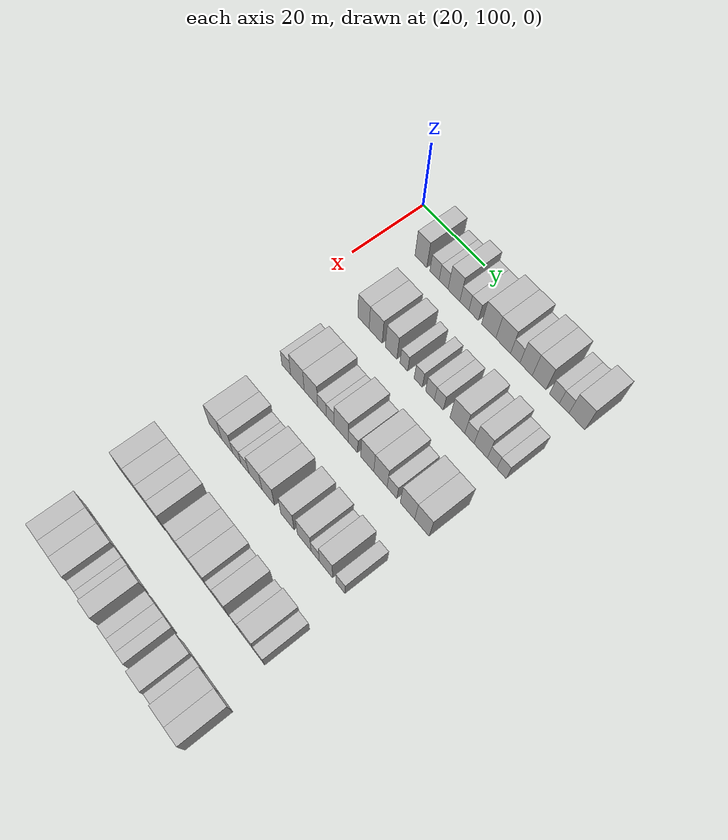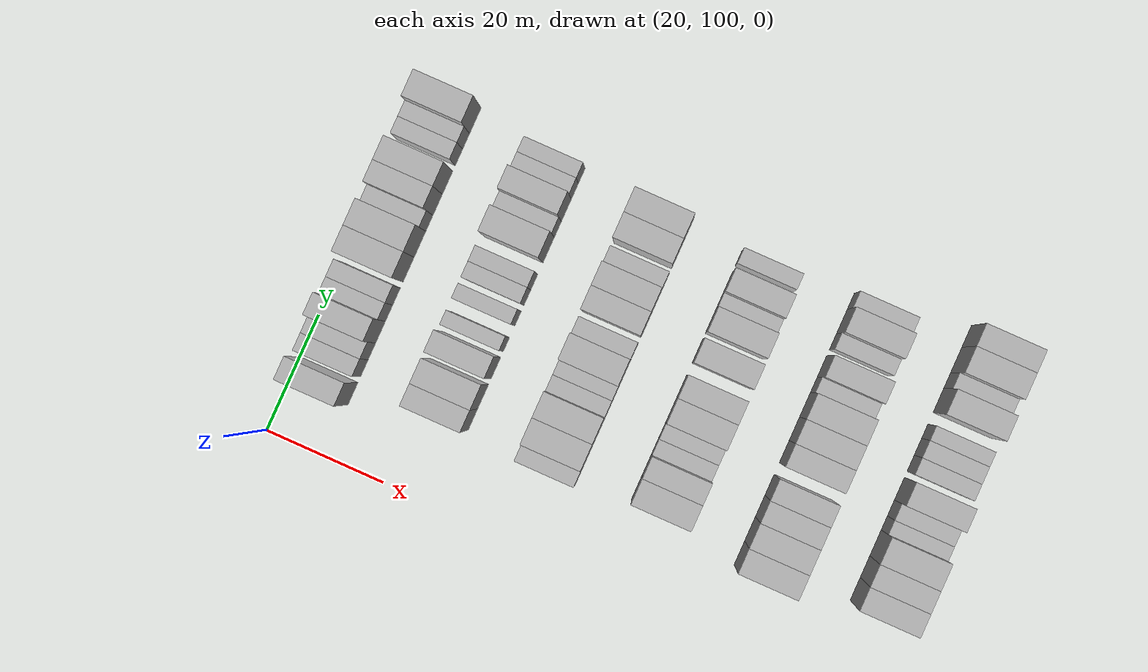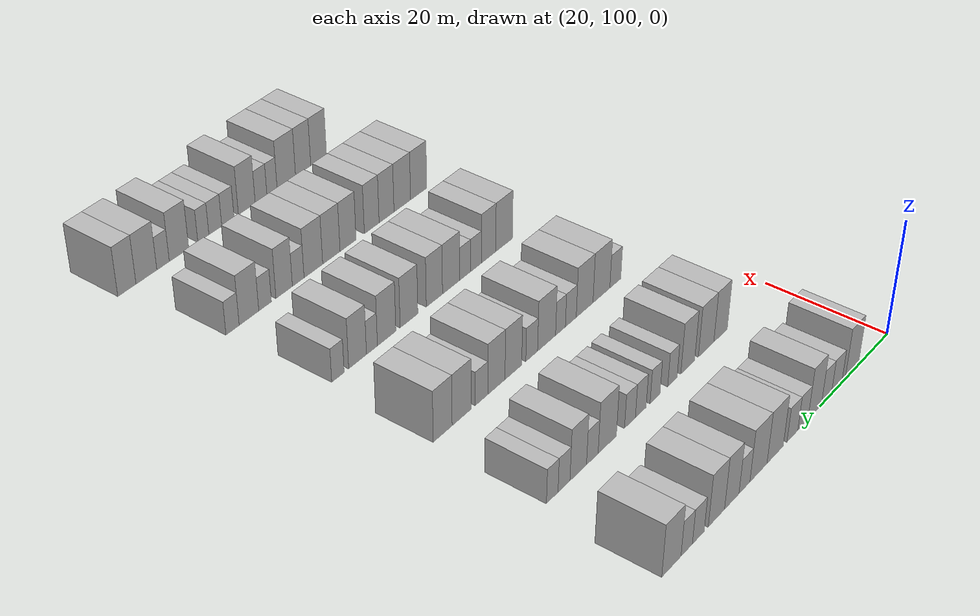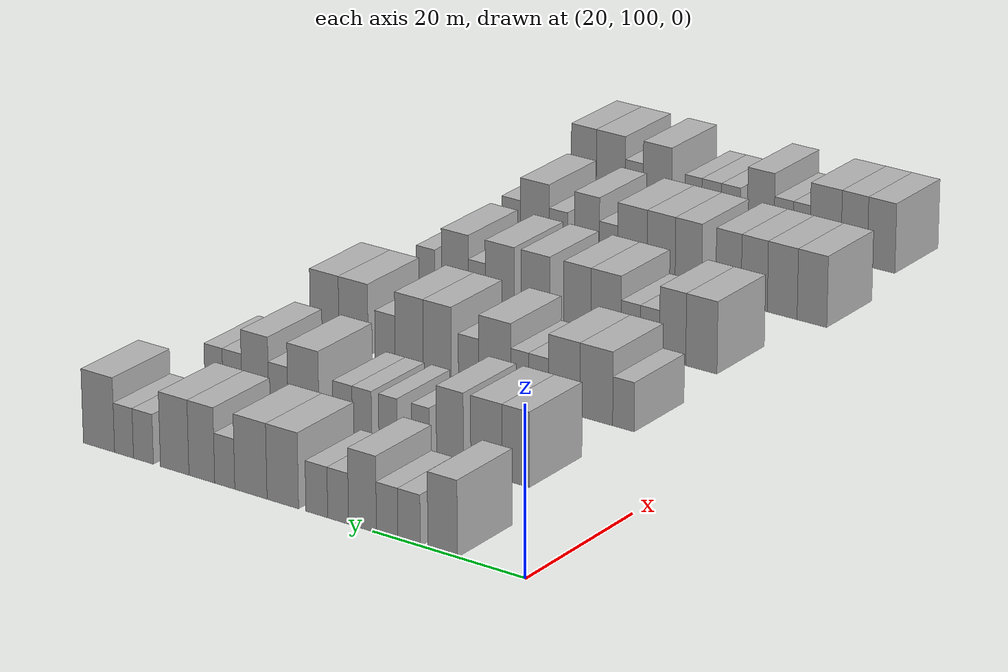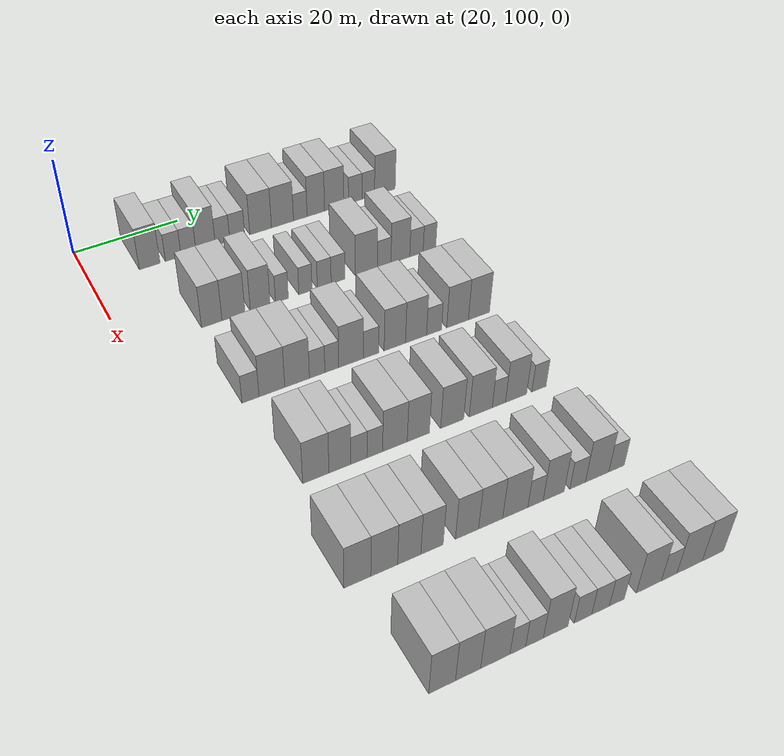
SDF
<sdf version="1.6">
 <world name="default">
  <model name="building_115">
   <static>1</static>
   <pose>25.0000 110.8154 0 0.000000 0.000000 0.000000</pose>
   <link name="link">
    <pose>0 0 4.50 0 0 0</pose>
    <collision name="collision"><geometry><box><size>10.0000 3.8846 9.0000</size></box></geometry></collision>
    <visual name="visual">
     <cast_shadows>0</cast_shadows>
     <geometry><box><size>10.0000 3.8846 9.0000</size></box></geometry>
     <material>
      <script>
       <uri>model://HANNAS_wall/materials/scripts</uri>
       <uri>model://HANNAS_wall/materials/textures</uri>
       <name>vrc/HANNAS_wall</name>
      </script>
     </material>
    </visual>
   </link>
  </model>
  <model name="building_116">
   <static>1</static>
   <pose>25.0000 115.2469 0 0.000000 0.000000 0.000000</pose>
   <link name="link">
    <pose>0 0 3.00 0 0 0</pose>
    <collision name="collision"><geometry><box><size>10.0000 2.9785 6.0000</size></box></geometry></collision>
    <visual name="visual">
     <cast_shadows>0</cast_shadows>
     <geometry><box><size>10.0000 2.9785 6.0000</size></box></geometry>
     <material>
      <script>
       <uri>model://HANNAS_wall/materials/scripts</uri>
       <uri>model://HANNAS_wall/materials/textures</uri>
       <name>vrc/HANNAS_wall</name>
      </script>
     </material>
    </visual>
   </link>
  </model>
  <model name="building_117">
   <static>1</static>
   <pose>25.0000 118.1664 0 0.000000 0.000000 0.000000</pose>
   <link name="link">
    <pose>0 0 3.00 0 0 0</pose>
    <collision name="collision"><geometry><box><size>10.0000 2.8604 6.0000</size></box></geometry></collision>
    <visual name="visual">
     <cast_shadows>0</cast_shadows>
     <geometry><box><size>10.0000 2.8604 6.0000</size></box></geometry>
     <material>
      <script>
       <uri>model://HANNAS_wall/materials/scripts</uri>
       <uri>model://HANNAS_wall/materials/textures</uri>
       <name>vrc/HANNAS_wall</name>
      </script>
     </material>
    </visual>
   </link>
  </model>
  <model name="building_118">
   <static>1</static>
   <pose>25.0000 121.4761 0 0.000000 0.000000 0.000000</pose>
   <link name="link">
    <pose>0 0 4.50 0 0 0</pose>
    <collision name="collision"><geometry><box><size>10.0000 3.7591 9.0000</size></box></geometry></collision>
    <visual name="visual">
     <cast_shadows>0</cast_shadows>
     <geometry><box><size>10.0000 3.7591 9.0000</size></box></geometry>
     <material>
      <script>
       <uri>model://HANNAS_wall/materials/scripts</uri>
       <uri>model://HANNAS_wall/materials/textures</uri>
       <name>vrc/HANNAS_wall</name>
      </script>
     </material>
    </visual>
   </link>
  </model>
  <model name="building_119">
   <static>1</static>
   <pose>25.0000 124.7653 0 0.000000 0.000000 0.000000</pose>
   <link name="link">
    <pose>0 0 3.00 0 0 0</pose>
    <collision name="collision"><geometry><box><size>10.0000 2.8192 6.0000</size></box></geometry></collision>
    <visual name="visual">
     <cast_shadows>0</cast_shadows>
     <geometry><box><size>10.0000 2.8192 6.0000</size></box></geometry>
     <material>
      <script>
       <uri>model://HANNAS_wall/materials/scripts</uri>
       <uri>model://HANNAS_wall/materials/textures</uri>
       <name>vrc/HANNAS_wall</name>
      </script>
     </material>
    </visual>
   </link>
  </model>
  <model name="building_120">
   <static>1</static>
   <pose>25.0000 127.6579 0 0.000000 0.000000 0.000000</pose>
   <link name="link">
    <pose>0 0 3.00 0 0 0</pose>
    <collision name="collision"><geometry><box><size>10.0000 2.9660 6.0000</size></box></geometry></collision>
    <visual name="visual">
     <cast_shadows>0</cast_shadows>
     <geometry><box><size>10.0000 2.9660 6.0000</size></box></geometry>
     <material>
      <script>
       <uri>model://HANNAS_wall/materials/scripts</uri>
       <uri>model://HANNAS_wall/materials/textures</uri>
       <name>vrc/HANNAS_wall</name>
      </script>
     </material>
    </visual>
   </link>
  </model>
  <model name="building_121">
   <static>1</static>
   <pose>25.0000 132.3076 0 0.000000 0.000000 0.000000</pose>
   <link name="link">
    <pose>0 0 4.50 0 0 0</pose>
    <collision name="collision"><geometry><box><size>10.0000 4.3334 9.0000</size></box></geometry></collision>
    <visual name="visual">
     <cast_shadows>0</cast_shadows>
     <geometry><box><size>10.0000 4.3334 9.0000</size></box></geometry>
     <material>
      <script>
       <uri>model://HANNAS_wall/materials/scripts</uri>
       <uri>model://HANNAS_wall/materials/textures</uri>
       <name>vrc/HANNAS_wall</name>
      </script>
     </material>
    </visual>
   </link>
  </model>
  <model name="building_122">
   <static>1</static>
   <pose>25.0000 136.7099 0 0.000000 0.000000 0.000000</pose>
   <link name="link">
    <pose>0 0 4.50 0 0 0</pose>
    <collision name="collision"><geometry><box><size>10.0000 4.4710 9.0000</size></box></geometry></collision>
    <visual name="visual">
     <cast_shadows>0</cast_shadows>
     <geometry><box><size>10.0000 4.4710 9.0000</size></box></geometry>
     <material>
      <script>
       <uri>model://HANNAS_wall/materials/scripts</uri>
       <uri>model://HANNAS_wall/materials/textures</uri>
       <name>vrc/HANNAS_wall</name>
      </script>
     </material>
    </visual>
   </link>
  </model>
  <model name="building_123">
   <static>1</static>
   <pose>25.0000 140.3420 0 0.000000 0.000000 0.000000</pose>
   <link name="link">
    <pose>0 0 3.00 0 0 0</pose>
    <collision name="collision"><geometry><box><size>10.0000 2.7933 6.0000</size></box></geometry></collision>
    <visual name="visual">
     <cast_shadows>0</cast_shadows>
     <geometry><box><size>10.0000 2.7933 6.0000</size></box></geometry>
     <material>
      <script>
       <uri>model://HANNAS_wall/materials/scripts</uri>
       <uri>model://HANNAS_wall/materials/textures</uri>
       <name>vrc/HANNAS_wall</name>
      </script>
     </material>
    </visual>
   </link>
  </model>
  <model name="building_124">
   <static>1</static>
   <pose>25.0000 143.5504 0 0.000000 0.000000 0.000000</pose>
   <link name="link">
    <pose>0 0 4.50 0 0 0</pose>
    <collision name="collision"><geometry><box><size>10.0000 3.6235 9.0000</size></box></geometry></collision>
    <visual name="visual">
     <cast_shadows>0</cast_shadows>
     <geometry><box><size>10.0000 3.6235 9.0000</size></box></geometry>
     <material>
      <script>
       <uri>model://HANNAS_wall/materials/scripts</uri>
       <uri>model://HANNAS_wall/materials/textures</uri>
       <name>vrc/HANNAS_wall</name>
      </script>
     </material>
    </visual>
   </link>
  </model>
  <model name="building_125">
   <static>1</static>
   <pose>25.0000 147.3735 0 0.000000 0.000000 0.000000</pose>
   <link name="link">
    <pose>0 0 4.50 0 0 0</pose>
    <collision name="collision"><geometry><box><size>10.0000 4.0228 9.0000</size></box></geometry></collision>
    <visual name="visual">
     <cast_shadows>0</cast_shadows>
     <geometry><box><size>10.0000 4.0228 9.0000</size></box></geometry>
     <material>
      <script>
       <uri>model://HANNAS_wall/materials/scripts</uri>
       <uri>model://HANNAS_wall/materials/textures</uri>
       <name>vrc/HANNAS_wall</name>
      </script>
     </material>
    </visual>
   </link>
  </model>
  <model name="building_126">
   <static>1</static>
   <pose>25.0000 151.8061 0 0.000000 0.000000 0.000000</pose>
   <link name="link">
    <pose>0 0 3.00 0 0 0</pose>
    <collision name="collision"><geometry><box><size>10.0000 2.8423 6.0000</size></box></geometry></collision>
    <visual name="visual">
     <cast_shadows>0</cast_shadows>
     <geometry><box><size>10.0000 2.8423 6.0000</size></box></geometry>
     <material>
      <script>
       <uri>model://HANNAS_wall/materials/scripts</uri>
       <uri>model://HANNAS_wall/materials/textures</uri>
       <name>vrc/HANNAS_wall</name>
      </script>
     </material>
    </visual>
   </link>
  </model>
  <model name="building_127">
   <static>1</static>
   <pose>25.0000 154.5812 0 0.000000 0.000000 0.000000</pose>
   <link name="link">
    <pose>0 0 3.00 0 0 0</pose>
    <collision name="collision"><geometry><box><size>10.0000 2.7080 6.0000</size></box></geometry></collision>
    <visual name="visual">
     <cast_shadows>0</cast_shadows>
     <geometry><box><size>10.0000 2.7080 6.0000</size></box></geometry>
     <material>
      <script>
       <uri>model://HANNAS_wall/materials/scripts</uri>
       <uri>model://HANNAS_wall/materials/textures</uri>
       <name>vrc/HANNAS_wall</name>
      </script>
     </material>
    </visual>
   </link>
  </model>
  <model name="building_128">
   <static>1</static>
   <pose>25.0000 158.1772 0 0.000000 0.000000 0.000000</pose>
   <link name="link">
    <pose>0 0 4.50 0 0 0</pose>
    <collision name="collision"><geometry><box><size>10.0000 4.4839 9.0000</size></box></geometry></collision>
    <visual name="visual">
     <cast_shadows>0</cast_shadows>
     <geometry><box><size>10.0000 4.4839 9.0000</size></box></geometry>
     <material>
      <script>
       <uri>model://HANNAS_wall/materials/scripts</uri>
       <uri>model://HANNAS_wall/materials/textures</uri>
       <name>vrc/HANNAS_wall</name>
      </script>
     </material>
    </visual>
   </link>
  </model>
  <model name="building_281">
   <static>1</static>
   <pose>44.0000 114.8215 0 0.000000 0.000000 0.000000</pose>
   <link name="link">
    <pose>0 0 4.50 0 0 0</pose>
    <collision name="collision"><geometry><box><size>10.0000 3.7053 9.0000</size></box></geometry></collision>
    <visual name="visual">
     <cast_shadows>0</cast_shadows>
     <geometry><box><size>10.0000 3.7053 9.0000</size></box></geometry>
     <material>
      <script>
       <uri>model://HANNAS_wall/materials/scripts</uri>
       <uri>model://HANNAS_wall/materials/textures</uri>
       <name>vrc/HANNAS_wall</name>
      </script>
     </material>
    </visual>
   </link>
  </model>
  <model name="building_282">
   <static>1</static>
   <pose>44.0000 118.7850 0 0.000000 0.000000 0.000000</pose>
   <link name="link">
    <pose>0 0 4.50 0 0 0</pose>
    <collision name="collision"><geometry><box><size>10.0000 4.2218 9.0000</size></box></geometry></collision>
    <visual name="visual">
     <cast_shadows>0</cast_shadows>
     <geometry><box><size>10.0000 4.2218 9.0000</size></box></geometry>
     <material>
      <script>
       <uri>model://HANNAS_wall/materials/scripts</uri>
       <uri>model://HANNAS_wall/materials/textures</uri>
       <name>vrc/HANNAS_wall</name>
      </script>
     </material>
    </visual>
   </link>
  </model>
  <model name="building_283">
   <static>1</static>
   <pose>44.0000 123.7349 0 0.000000 0.000000 0.000000</pose>
   <link name="link">
    <pose>0 0 4.50 0 0 0</pose>
    <collision name="collision"><geometry><box><size>10.0000 3.6779 9.0000</size></box></geometry></collision>
    <visual name="visual">
     <cast_shadows>0</cast_shadows>
     <geometry><box><size>10.0000 3.6779 9.0000</size></box></geometry>
     <material>
      <script>
       <uri>model://HANNAS_wall/materials/scripts</uri>
       <uri>model://HANNAS_wall/materials/textures</uri>
       <name>vrc/HANNAS_wall</name>
      </script>
     </material>
    </visual>
   </link>
  </model>
  <model name="building_284">
   <static>1</static>
   <pose>44.0000 127.7904 0 0.000000 0.000000 0.000000</pose>
   <link name="link">
    <pose>0 0 3.00 0 0 0</pose>
    <collision name="collision"><geometry><box><size>10.0000 2.4332 6.0000</size></box></geometry></collision>
    <visual name="visual">
     <cast_shadows>0</cast_shadows>
     <geometry><box><size>10.0000 2.4332 6.0000</size></box></geometry>
     <material>
      <script>
       <uri>model://HANNAS_wall/materials/scripts</uri>
       <uri>model://HANNAS_wall/materials/textures</uri>
       <name>vrc/HANNAS_wall</name>
      </script>
     </material>
    </visual>
   </link>
  </model>
  <model name="building_285">
   <static>1</static>
   <pose>44.0000 132.2761 0 0.000000 0.000000 0.000000</pose>
   <link name="link">
    <pose>0 0 3.00 0 0 0</pose>
    <collision name="collision"><geometry><box><size>10.0000 2.5382 6.0000</size></box></geometry></collision>
    <visual name="visual">
     <cast_shadows>0</cast_shadows>
     <geometry><box><size>10.0000 2.5382 6.0000</size></box></geometry>
     <material>
      <script>
       <uri>model://HANNAS_wall/materials/scripts</uri>
       <uri>model://HANNAS_wall/materials/textures</uri>
       <name>vrc/HANNAS_wall</name>
      </script>
     </material>
    </visual>
   </link>
  </model>
  <model name="building_286">
   <static>1</static>
   <pose>44.0000 135.8929 0 0.000000 0.000000 0.000000</pose>
   <link name="link">
    <pose>0 0 3.00 0 0 0</pose>
    <collision name="collision"><geometry><box><size>10.0000 2.6954 6.0000</size></box></geometry></collision>
    <visual name="visual">
     <cast_shadows>0</cast_shadows>
     <geometry><box><size>10.0000 2.6954 6.0000</size></box></geometry>
     <material>
      <script>
       <uri>model://HANNAS_wall/materials/scripts</uri>
       <uri>model://HANNAS_wall/materials/textures</uri>
       <name>vrc/HANNAS_wall</name>
      </script>
     </material>
    </visual>
   </link>
  </model>
  <model name="building_287">
   <static>1</static>
   <pose>44.0000 138.5909 0 0.000000 0.000000 0.000000</pose>
   <link name="link">
    <pose>0 0 3.00 0 0 0</pose>
    <collision name="collision"><geometry><box><size>10.0000 2.7006 6.0000</size></box></geometry></collision>
    <visual name="visual">
     <cast_shadows>0</cast_shadows>
     <geometry><box><size>10.0000 2.7006 6.0000</size></box></geometry>
     <material>
      <script>
       <uri>model://HANNAS_wall/materials/scripts</uri>
       <uri>model://HANNAS_wall/materials/textures</uri>
       <name>vrc/HANNAS_wall</name>
      </script>
     </material>
    </visual>
   </link>
  </model>
  <model name="building_288">
   <static>1</static>
   <pose>44.0000 144.1435 0 0.000000 0.000000 0.000000</pose>
   <link name="link">
    <pose>0 0 4.50 0 0 0</pose>
    <collision name="collision"><geometry><box><size>10.0000 4.4048 9.0000</size></box></geometry></collision>
    <visual name="visual">
     <cast_shadows>0</cast_shadows>
     <geometry><box><size>10.0000 4.4048 9.0000</size></box></geometry>
     <material>
      <script>
       <uri>model://HANNAS_wall/materials/scripts</uri>
       <uri>model://HANNAS_wall/materials/textures</uri>
       <name>vrc/HANNAS_wall</name>
      </script>
     </material>
    </visual>
   </link>
  </model>
  <model name="building_289">
   <static>1</static>
   <pose>44.0000 147.7178 0 0.000000 0.000000 0.000000</pose>
   <link name="link">
    <pose>0 0 3.00 0 0 0</pose>
    <collision name="collision"><geometry><box><size>10.0000 2.7438 6.0000</size></box></geometry></collision>
    <visual name="visual">
     <cast_shadows>0</cast_shadows>
     <geometry><box><size>10.0000 2.7438 6.0000</size></box></geometry>
     <material>
      <script>
       <uri>model://HANNAS_wall/materials/scripts</uri>
       <uri>model://HANNAS_wall/materials/textures</uri>
       <name>vrc/HANNAS_wall</name>
      </script>
     </material>
    </visual>
   </link>
  </model>
  <model name="building_290">
   <static>1</static>
   <pose>44.0000 151.0217 0 0.000000 0.000000 0.000000</pose>
   <link name="link">
    <pose>0 0 4.50 0 0 0</pose>
    <collision name="collision"><geometry><box><size>10.0000 3.8639 9.0000</size></box></geometry></collision>
    <visual name="visual">
     <cast_shadows>0</cast_shadows>
     <geometry><box><size>10.0000 3.8639 9.0000</size></box></geometry>
     <material>
      <script>
       <uri>model://HANNAS_wall/materials/scripts</uri>
       <uri>model://HANNAS_wall/materials/textures</uri>
       <name>vrc/HANNAS_wall</name>
      </script>
     </material>
    </visual>
   </link>
  </model>
  <model name="building_291">
   <static>1</static>
   <pose>44.0000 154.3227 0 0.000000 0.000000 0.000000</pose>
   <link name="link">
    <pose>0 0 3.00 0 0 0</pose>
    <collision name="collision"><geometry><box><size>10.0000 2.7380 6.0000</size></box></geometry></collision>
    <visual name="visual">
     <cast_shadows>0</cast_shadows>
     <geometry><box><size>10.0000 2.7380 6.0000</size></box></geometry>
     <material>
      <script>
       <uri>model://HANNAS_wall/materials/scripts</uri>
       <uri>model://HANNAS_wall/materials/textures</uri>
       <name>vrc/HANNAS_wall</name>
      </script>
     </material>
    </visual>
   </link>
  </model>
  <model name="building_292">
   <static>1</static>
   <pose>44.0000 157.0008 0 0.000000 0.000000 0.000000</pose>
   <link name="link">
    <pose>0 0 3.00 0 0 0</pose>
    <collision name="collision"><geometry><box><size>10.0000 2.6182 6.0000</size></box></geometry></collision>
    <visual name="visual">
     <cast_shadows>0</cast_shadows>
     <geometry><box><size>10.0000 2.6182 6.0000</size></box></geometry>
     <material>
      <script>
       <uri>model://HANNAS_wall/materials/scripts</uri>
       <uri>model://HANNAS_wall/materials/textures</uri>
       <name>vrc/HANNAS_wall</name>
      </script>
     </material>
    </visual>
   </link>
  </model>
  <model name="building_460">
   <static>1</static>
   <pose>63.0000 113.5476 0 0.000000 0.000000 0.000000</pose>
   <link name="link">
    <pose>0 0 3.00 0 0 0</pose>
    <collision name="collision"><geometry><box><size>10.0000 2.9346 6.0000</size></box></geometry></collision>
    <visual name="visual">
     <cast_shadows>0</cast_shadows>
     <geometry><box><size>10.0000 2.9346 6.0000</size></box></geometry>
     <material>
      <script>
       <uri>model://HANNAS_wall/materials/scripts</uri>
       <uri>model://HANNAS_wall/materials/textures</uri>
       <name>vrc/HANNAS_wall</name>
      </script>
     </material>
    </visual>
   </link>
  </model>
  <model name="building_461">
   <static>1</static>
   <pose>63.0000 117.2497 0 0.000000 0.000000 0.000000</pose>
   <link name="link">
    <pose>0 0 4.50 0 0 0</pose>
    <collision name="collision"><geometry><box><size>10.0000 4.4695 9.0000</size></box></geometry></collision>
    <visual name="visual">
     <cast_shadows>0</cast_shadows>
     <geometry><box><size>10.0000 4.4695 9.0000</size></box></geometry>
     <material>
      <script>
       <uri>model://HANNAS_wall/materials/scripts</uri>
       <uri>model://HANNAS_wall/materials/textures</uri>
       <name>vrc/HANNAS_wall</name>
      </script>
     </material>
    </visual>
   </link>
  </model>
  <model name="building_462">
   <static>1</static>
   <pose>63.0000 121.6622 0 0.000000 0.000000 0.000000</pose>
   <link name="link">
    <pose>0 0 4.50 0 0 0</pose>
    <collision name="collision"><geometry><box><size>10.0000 4.3555 9.0000</size></box></geometry></collision>
    <visual name="visual">
     <cast_shadows>0</cast_shadows>
     <geometry><box><size>10.0000 4.3555 9.0000</size></box></geometry>
     <material>
      <script>
       <uri>model://HANNAS_wall/materials/scripts</uri>
       <uri>model://HANNAS_wall/materials/textures</uri>
       <name>vrc/HANNAS_wall</name>
      </script>
     </material>
    </visual>
   </link>
  </model>
  <model name="building_463">
   <static>1</static>
   <pose>63.0000 125.2236 0 0.000000 0.000000 0.000000</pose>
   <link name="link">
    <pose>0 0 3.00 0 0 0</pose>
    <collision name="collision"><geometry><box><size>10.0000 2.7673 6.0000</size></box></geometry></collision>
    <visual name="visual">
     <cast_shadows>0</cast_shadows>
     <geometry><box><size>10.0000 2.7673 6.0000</size></box></geometry>
     <material>
      <script>
       <uri>model://HANNAS_wall/materials/scripts</uri>
       <uri>model://HANNAS_wall/materials/textures</uri>
       <name>vrc/HANNAS_wall</name>
      </script>
     </material>
    </visual>
   </link>
  </model>
  <model name="building_464">
   <static>1</static>
   <pose>63.0000 127.8483 0 0.000000 0.000000 0.000000</pose>
   <link name="link">
    <pose>0 0 3.00 0 0 0</pose>
    <collision name="collision"><geometry><box><size>10.0000 2.4822 6.0000</size></box></geometry></collision>
    <visual name="visual">
     <cast_shadows>0</cast_shadows>
     <geometry><box><size>10.0000 2.4822 6.0000</size></box></geometry>
     <material>
      <script>
       <uri>model://HANNAS_wall/materials/scripts</uri>
       <uri>model://HANNAS_wall/materials/textures</uri>
       <name>vrc/HANNAS_wall</name>
      </script>
     </material>
    </visual>
   </link>
  </model>
  <model name="building_465">
   <static>1</static>
   <pose>63.0000 131.3277 0 0.000000 0.000000 0.000000</pose>
   <link name="link">
    <pose>0 0 4.50 0 0 0</pose>
    <collision name="collision"><geometry><box><size>10.0000 4.4767 9.0000</size></box></geometry></collision>
    <visual name="visual">
     <cast_shadows>0</cast_shadows>
     <geometry><box><size>10.0000 4.4767 9.0000</size></box></geometry>
     <material>
      <script>
       <uri>model://HANNAS_wall/materials/scripts</uri>
       <uri>model://HANNAS_wall/materials/textures</uri>
       <name>vrc/HANNAS_wall</name>
      </script>
     </material>
    </visual>
   </link>
  </model>
  <model name="building_466">
   <static>1</static>
   <pose>63.0000 135.0017 0 0.000000 0.000000 0.000000</pose>
   <link name="link">
    <pose>0 0 3.00 0 0 0</pose>
    <collision name="collision"><geometry><box><size>10.0000 2.8712 6.0000</size></box></geometry></collision>
    <visual name="visual">
     <cast_shadows>0</cast_shadows>
     <geometry><box><size>10.0000 2.8712 6.0000</size></box></geometry>
     <material>
      <script>
       <uri>model://HANNAS_wall/materials/scripts</uri>
       <uri>model://HANNAS_wall/materials/textures</uri>
       <name>vrc/HANNAS_wall</name>
      </script>
     </material>
    </visual>
   </link>
  </model>
  <model name="building_467">
   <static>1</static>
   <pose>63.0000 139.4402 0 0.000000 0.000000 0.000000</pose>
   <link name="link">
    <pose>0 0 4.50 0 0 0</pose>
    <collision name="collision"><geometry><box><size>10.0000 4.0059 9.0000</size></box></geometry></collision>
    <visual name="visual">
     <cast_shadows>0</cast_shadows>
     <geometry><box><size>10.0000 4.0059 9.0000</size></box></geometry>
     <material>
      <script>
       <uri>model://HANNAS_wall/materials/scripts</uri>
       <uri>model://HANNAS_wall/materials/textures</uri>
       <name>vrc/HANNAS_wall</name>
      </script>
     </material>
    </visual>
   </link>
  </model>
  <model name="building_468">
   <static>1</static>
   <pose>63.0000 143.4552 0 0.000000 0.000000 0.000000</pose>
   <link name="link">
    <pose>0 0 4.50 0 0 0</pose>
    <collision name="collision"><geometry><box><size>10.0000 4.0240 9.0000</size></box></geometry></collision>
    <visual name="visual">
     <cast_shadows>0</cast_shadows>
     <geometry><box><size>10.0000 4.0240 9.0000</size></box></geometry>
     <material>
      <script>
       <uri>model://HANNAS_wall/materials/scripts</uri>
       <uri>model://HANNAS_wall/materials/textures</uri>
       <name>vrc/HANNAS_wall</name>
      </script>
     </material>
    </visual>
   </link>
  </model>
  <model name="building_469">
   <static>1</static>
   <pose>63.0000 146.9129 0 0.000000 0.000000 0.000000</pose>
   <link name="link">
    <pose>0 0 3.00 0 0 0</pose>
    <collision name="collision"><geometry><box><size>10.0000 2.8915 6.0000</size></box></geometry></collision>
    <visual name="visual">
     <cast_shadows>0</cast_shadows>
     <geometry><box><size>10.0000 2.8915 6.0000</size></box></geometry>
     <material>
      <script>
       <uri>model://HANNAS_wall/materials/scripts</uri>
       <uri>model://HANNAS_wall/materials/textures</uri>
       <name>vrc/HANNAS_wall</name>
      </script>
     </material>
    </visual>
   </link>
  </model>
  <model name="building_470">
   <static>1</static>
   <pose>63.0000 151.4804 0 0.000000 0.000000 0.000000</pose>
   <link name="link">
    <pose>0 0 4.50 0 0 0</pose>
    <collision name="collision"><geometry><box><size>10.0000 4.2435 9.0000</size></box></geometry></collision>
    <visual name="visual">
     <cast_shadows>0</cast_shadows>
     <geometry><box><size>10.0000 4.2435 9.0000</size></box></geometry>
     <material>
      <script>
       <uri>model://HANNAS_wall/materials/scripts</uri>
       <uri>model://HANNAS_wall/materials/textures</uri>
       <name>vrc/HANNAS_wall</name>
      </script>
     </material>
    </visual>
   </link>
  </model>
  <model name="building_471">
   <static>1</static>
   <pose>63.0000 155.6951 0 0.000000 0.000000 0.000000</pose>
   <link name="link">
    <pose>0 0 4.50 0 0 0</pose>
    <collision name="collision"><geometry><box><size>10.0000 4.1859 9.0000</size></box></geometry></collision>
    <visual name="visual">
     <cast_shadows>0</cast_shadows>
     <geometry><box><size>10.0000 4.1859 9.0000</size></box></geometry>
     <material>
      <script>
       <uri>model://HANNAS_wall/materials/scripts</uri>
       <uri>model://HANNAS_wall/materials/textures</uri>
       <name>vrc/HANNAS_wall</name>
      </script>
     </material>
    </visual>
   </link>
  </model>
  <model name="building_632">
   <static>1</static>
   <pose>82.0000 115.6976 0 0.000000 0.000000 0.000000</pose>
   <link name="link">
    <pose>0 0 4.50 0 0 0</pose>
    <collision name="collision"><geometry><box><size>10.0000 4.3152 9.0000</size></box></geometry></collision>
    <visual name="visual">
     <cast_shadows>0</cast_shadows>
     <geometry><box><size>10.0000 4.3152 9.0000</size></box></geometry>
     <material>
      <script>
       <uri>model://HANNAS_wall/materials/scripts</uri>
       <uri>model://HANNAS_wall/materials/textures</uri>
       <name>vrc/HANNAS_wall</name>
      </script>
     </material>
    </visual>
   </link>
  </model>
  <model name="building_633">
   <static>1</static>
   <pose>82.0000 119.6827 0 0.000000 0.000000 0.000000</pose>
   <link name="link">
    <pose>0 0 4.50 0 0 0</pose>
    <collision name="collision"><geometry><box><size>10.0000 3.6550 9.0000</size></box></geometry></collision>
    <visual name="visual">
     <cast_shadows>0</cast_shadows>
     <geometry><box><size>10.0000 3.6550 9.0000</size></box></geometry>
     <material>
      <script>
       <uri>model://HANNAS_wall/materials/scripts</uri>
       <uri>model://HANNAS_wall/materials/textures</uri>
       <name>vrc/HANNAS_wall</name>
      </script>
     </material>
    </visual>
   </link>
  </model>
  <model name="building_634">
   <static>1</static>
   <pose>82.0000 122.8664 0 0.000000 0.000000 0.000000</pose>
   <link name="link">
    <pose>0 0 3.00 0 0 0</pose>
    <collision name="collision"><geometry><box><size>10.0000 2.7124 6.0000</size></box></geometry></collision>
    <visual name="visual">
     <cast_shadows>0</cast_shadows>
     <geometry><box><size>10.0000 2.7124 6.0000</size></box></geometry>
     <material>
      <script>
       <uri>model://HANNAS_wall/materials/scripts</uri>
       <uri>model://HANNAS_wall/materials/textures</uri>
       <name>vrc/HANNAS_wall</name>
      </script>
     </material>
    </visual>
   </link>
  </model>
  <model name="building_635">
   <static>1</static>
   <pose>82.0000 125.5543 0 0.000000 0.000000 0.000000</pose>
   <link name="link">
    <pose>0 0 3.00 0 0 0</pose>
    <collision name="collision"><geometry><box><size>10.0000 2.6633 6.0000</size></box></geometry></collision>
    <visual name="visual">
     <cast_shadows>0</cast_shadows>
     <geometry><box><size>10.0000 2.6633 6.0000</size></box></geometry>
     <material>
      <script>
       <uri>model://HANNAS_wall/materials/scripts</uri>
       <uri>model://HANNAS_wall/materials/textures</uri>
       <name>vrc/HANNAS_wall</name>
      </script>
     </material>
    </visual>
   </link>
  </model>
  <model name="building_636">
   <static>1</static>
   <pose>82.0000 129.0116 0 0.000000 0.000000 0.000000</pose>
   <link name="link">
    <pose>0 0 4.50 0 0 0</pose>
    <collision name="collision"><geometry><box><size>10.0000 4.2514 9.0000</size></box></geometry></collision>
    <visual name="visual">
     <cast_shadows>0</cast_shadows>
     <geometry><box><size>10.0000 4.2514 9.0000</size></box></geometry>
     <material>
      <script>
       <uri>model://HANNAS_wall/materials/scripts</uri>
       <uri>model://HANNAS_wall/materials/textures</uri>
       <name>vrc/HANNAS_wall</name>
      </script>
     </material>
    </visual>
   </link>
  </model>
  <model name="building_637">
   <static>1</static>
   <pose>82.0000 133.0811 0 0.000000 0.000000 0.000000</pose>
   <link name="link">
    <pose>0 0 4.50 0 0 0</pose>
    <collision name="collision"><geometry><box><size>10.0000 3.8874 9.0000</size></box></geometry></collision>
    <visual name="visual">
     <cast_shadows>0</cast_shadows>
     <geometry><box><size>10.0000 3.8874 9.0000</size></box></geometry>
     <material>
      <script>
       <uri>model://HANNAS_wall/materials/scripts</uri>
       <uri>model://HANNAS_wall/materials/textures</uri>
       <name>vrc/HANNAS_wall</name>
      </script>
     </material>
    </visual>
   </link>
  </model>
  <model name="building_638">
   <static>1</static>
   <pose>82.0000 139.0921 0 0.000000 0.000000 0.000000</pose>
   <link name="link">
    <pose>0 0 4.50 0 0 0</pose>
    <collision name="collision"><geometry><box><size>10.0000 4.1346 9.0000</size></box></geometry></collision>
    <visual name="visual">
     <cast_shadows>0</cast_shadows>
     <geometry><box><size>10.0000 4.1346 9.0000</size></box></geometry>
     <material>
      <script>
       <uri>model://HANNAS_wall/materials/scripts</uri>
       <uri>model://HANNAS_wall/materials/textures</uri>
       <name>vrc/HANNAS_wall</name>
      </script>
     </material>
    </visual>
   </link>
  </model>
  <model name="building_639">
   <static>1</static>
   <pose>82.0000 144.2587 0 0.000000 0.000000 0.000000</pose>
   <link name="link">
    <pose>0 0 4.50 0 0 0</pose>
    <collision name="collision"><geometry><box><size>10.0000 4.1985 9.0000</size></box></geometry></collision>
    <visual name="visual">
     <cast_shadows>0</cast_shadows>
     <geometry><box><size>10.0000 4.1985 9.0000</size></box></geometry>
     <material>
      <script>
       <uri>model://HANNAS_wall/materials/scripts</uri>
       <uri>model://HANNAS_wall/materials/textures</uri>
       <name>vrc/HANNAS_wall</name>
      </script>
     </material>
    </visual>
   </link>
  </model>
  <model name="building_640">
   <static>1</static>
   <pose>82.0000 147.5904 0 0.000000 0.000000 0.000000</pose>
   <link name="link">
    <pose>0 0 3.00 0 0 0</pose>
    <collision name="collision"><geometry><box><size>10.0000 2.4649 6.0000</size></box></geometry></collision>
    <visual name="visual">
     <cast_shadows>0</cast_shadows>
     <geometry><box><size>10.0000 2.4649 6.0000</size></box></geometry>
     <material>
      <script>
       <uri>model://HANNAS_wall/materials/scripts</uri>
       <uri>model://HANNAS_wall/materials/textures</uri>
       <name>vrc/HANNAS_wall</name>
      </script>
     </material>
    </visual>
   </link>
  </model>
  <model name="building_641">
   <static>1</static>
   <pose>82.0000 150.7930 0 0.000000 0.000000 0.000000</pose>
   <link name="link">
    <pose>0 0 4.50 0 0 0</pose>
    <collision name="collision"><geometry><box><size>10.0000 3.9403 9.0000</size></box></geometry></collision>
    <visual name="visual">
     <cast_shadows>0</cast_shadows>
     <geometry><box><size>10.0000 3.9403 9.0000</size></box></geometry>
     <material>
      <script>
       <uri>model://HANNAS_wall/materials/scripts</uri>
       <uri>model://HANNAS_wall/materials/textures</uri>
       <name>vrc/HANNAS_wall</name>
      </script>
     </material>
    </visual>
   </link>
  </model>
  <model name="building_642">
   <static>1</static>
   <pose>82.0000 155.1081 0 0.000000 0.000000 0.000000</pose>
   <link name="link">
    <pose>0 0 3.00 0 0 0</pose>
    <collision name="collision"><geometry><box><size>10.0000 2.6899 6.0000</size></box></geometry></collision>
    <visual name="visual">
     <cast_shadows>0</cast_shadows>
     <geometry><box><size>10.0000 2.6899 6.0000</size></box></geometry>
     <material>
      <script>
       <uri>model://HANNAS_wall/materials/scripts</uri>
       <uri>model://HANNAS_wall/materials/textures</uri>
       <name>vrc/HANNAS_wall</name>
      </script>
     </material>
    </visual>
   </link>
  </model>
  <model name="building_805">
   <static>1</static>
   <pose>101.0000 112.7147 0 0.000000 0.000000 0.000000</pose>
   <link name="link">
    <pose>0 0 4.50 0 0 0</pose>
    <collision name="collision"><geometry><box><size>10.0000 4.1373 9.0000</size></box></geometry></collision>
    <visual name="visual">
     <cast_shadows>0</cast_shadows>
     <geometry><box><size>10.0000 4.1373 9.0000</size></box></geometry>
     <material>
      <script>
       <uri>model://HANNAS_wall/materials/scripts</uri>
       <uri>model://HANNAS_wall/materials/textures</uri>
       <name>vrc/HANNAS_wall</name>
      </script>
     </material>
    </visual>
   </link>
  </model>
  <model name="building_806">
   <static>1</static>
   <pose>101.0000 116.8764 0 0.000000 0.000000 0.000000</pose>
   <link name="link">
    <pose>0 0 4.50 0 0 0</pose>
    <collision name="collision"><geometry><box><size>10.0000 4.1859 9.0000</size></box></geometry></collision>
    <visual name="visual">
     <cast_shadows>0</cast_shadows>
     <geometry><box><size>10.0000 4.1859 9.0000</size></box></geometry>
     <material>
      <script>
       <uri>model://HANNAS_wall/materials/scripts</uri>
       <uri>model://HANNAS_wall/materials/textures</uri>
       <name>vrc/HANNAS_wall</name>
      </script>
     </material>
    </visual>
   </link>
  </model>
  <model name="building_807">
   <static>1</static>
   <pose>101.0000 120.8206 0 0.000000 0.000000 0.000000</pose>
   <link name="link">
    <pose>0 0 4.50 0 0 0</pose>
    <collision name="collision"><geometry><box><size>10.0000 3.7026 9.0000</size></box></geometry></collision>
    <visual name="visual">
     <cast_shadows>0</cast_shadows>
     <geometry><box><size>10.0000 3.7026 9.0000</size></box></geometry>
     <material>
      <script>
       <uri>model://HANNAS_wall/materials/scripts</uri>
       <uri>model://HANNAS_wall/materials/textures</uri>
       <name>vrc/HANNAS_wall</name>
      </script>
     </material>
    </visual>
   </link>
  </model>
  <model name="building_808">
   <static>1</static>
   <pose>101.0000 124.4747 0 0.000000 0.000000 0.000000</pose>
   <link name="link">
    <pose>0 0 4.50 0 0 0</pose>
    <collision name="collision"><geometry><box><size>10.0000 3.6056 9.0000</size></box></geometry></collision>
    <visual name="visual">
     <cast_shadows>0</cast_shadows>
     <geometry><box><size>10.0000 3.6056 9.0000</size></box></geometry>
     <material>
      <script>
       <uri>model://HANNAS_wall/materials/scripts</uri>
       <uri>model://HANNAS_wall/materials/textures</uri>
       <name>vrc/HANNAS_wall</name>
      </script>
     </material>
    </visual>
   </link>
  </model>
  <model name="building_809">
   <static>1</static>
   <pose>101.0000 130.1882 0 0.000000 0.000000 0.000000</pose>
   <link name="link">
    <pose>0 0 4.50 0 0 0</pose>
    <collision name="collision"><geometry><box><size>10.0000 3.8213 9.0000</size></box></geometry></collision>
    <visual name="visual">
     <cast_shadows>0</cast_shadows>
     <geometry><box><size>10.0000 3.8213 9.0000</size></box></geometry>
     <material>
      <script>
       <uri>model://HANNAS_wall/materials/scripts</uri>
       <uri>model://HANNAS_wall/materials/textures</uri>
       <name>vrc/HANNAS_wall</name>
      </script>
     </material>
    </visual>
   </link>
  </model>
  <model name="building_810">
   <static>1</static>
   <pose>101.0000 134.1279 0 0.000000 0.000000 0.000000</pose>
   <link name="link">
    <pose>0 0 4.50 0 0 0</pose>
    <collision name="collision"><geometry><box><size>10.0000 4.0582 9.0000</size></box></geometry></collision>
    <visual name="visual">
     <cast_shadows>0</cast_shadows>
     <geometry><box><size>10.0000 4.0582 9.0000</size></box></geometry>
     <material>
      <script>
       <uri>model://HANNAS_wall/materials/scripts</uri>
       <uri>model://HANNAS_wall/materials/textures</uri>
       <name>vrc/HANNAS_wall</name>
      </script>
     </material>
    </visual>
   </link>
  </model>
  <model name="building_811">
   <static>1</static>
   <pose>101.0000 138.3031 0 0.000000 0.000000 0.000000</pose>
   <link name="link">
    <pose>0 0 4.50 0 0 0</pose>
    <collision name="collision"><geometry><box><size>10.0000 4.2923 9.0000</size></box></geometry></collision>
    <visual name="visual">
     <cast_shadows>0</cast_shadows>
     <geometry><box><size>10.0000 4.2923 9.0000</size></box></geometry>
     <material>
      <script>
       <uri>model://HANNAS_wall/materials/scripts</uri>
       <uri>model://HANNAS_wall/materials/textures</uri>
       <name>vrc/HANNAS_wall</name>
      </script>
     </material>
    </visual>
   </link>
  </model>
  <model name="building_812">
   <static>1</static>
   <pose>101.0000 141.7707 0 0.000000 0.000000 0.000000</pose>
   <link name="link">
    <pose>0 0 3.00 0 0 0</pose>
    <collision name="collision"><geometry><box><size>10.0000 2.6428 6.0000</size></box></geometry></collision>
    <visual name="visual">
     <cast_shadows>0</cast_shadows>
     <geometry><box><size>10.0000 2.6428 6.0000</size></box></geometry>
     <material>
      <script>
       <uri>model://HANNAS_wall/materials/scripts</uri>
       <uri>model://HANNAS_wall/materials/textures</uri>
       <name>vrc/HANNAS_wall</name>
      </script>
     </material>
    </visual>
   </link>
  </model>
  <model name="building_813">
   <static>1</static>
   <pose>101.0000 144.9306 0 0.000000 0.000000 0.000000</pose>
   <link name="link">
    <pose>0 0 4.50 0 0 0</pose>
    <collision name="collision"><geometry><box><size>10.0000 3.6772 9.0000</size></box></geometry></collision>
    <visual name="visual">
     <cast_shadows>0</cast_shadows>
     <geometry><box><size>10.0000 3.6772 9.0000</size></box></geometry>
     <material>
      <script>
       <uri>model://HANNAS_wall/materials/scripts</uri>
       <uri>model://HANNAS_wall/materials/textures</uri>
       <name>vrc/HANNAS_wall</name>
      </script>
     </material>
    </visual>
   </link>
  </model>
  <model name="building_814">
   <static>1</static>
   <pose>101.0000 149.1544 0 0.000000 0.000000 0.000000</pose>
   <link name="link">
    <pose>0 0 3.00 0 0 0</pose>
    <collision name="collision"><geometry><box><size>10.0000 2.7705 6.0000</size></box></geometry></collision>
    <visual name="visual">
     <cast_shadows>0</cast_shadows>
     <geometry><box><size>10.0000 2.7705 6.0000</size></box></geometry>
     <material>
      <script>
       <uri>model://HANNAS_wall/materials/scripts</uri>
       <uri>model://HANNAS_wall/materials/textures</uri>
       <name>vrc/HANNAS_wall</name>
      </script>
     </material>
    </visual>
   </link>
  </model>
  <model name="building_815">
   <static>1</static>
   <pose>101.0000 152.6530 0 0.000000 0.000000 0.000000</pose>
   <link name="link">
    <pose>0 0 4.50 0 0 0</pose>
    <collision name="collision"><geometry><box><size>10.0000 4.2267 9.0000</size></box></geometry></collision>
    <visual name="visual">
     <cast_shadows>0</cast_shadows>
     <geometry><box><size>10.0000 4.2267 9.0000</size></box></geometry>
     <material>
      <script>
       <uri>model://HANNAS_wall/materials/scripts</uri>
       <uri>model://HANNAS_wall/materials/textures</uri>
       <name>vrc/HANNAS_wall</name>
      </script>
     </material>
    </visual>
   </link>
  </model>
  <model name="building_816">
   <static>1</static>
   <pose>101.0000 156.1714 0 0.000000 0.000000 0.000000</pose>
   <link name="link">
    <pose>0 0 3.00 0 0 0</pose>
    <collision name="collision"><geometry><box><size>10.0000 2.8102 6.0000</size></box></geometry></collision>
    <visual name="visual">
     <cast_shadows>0</cast_shadows>
     <geometry><box><size>10.0000 2.8102 6.0000</size></box></geometry>
     <material>
      <script>
       <uri>model://HANNAS_wall/materials/scripts</uri>
       <uri>model://HANNAS_wall/materials/textures</uri>
       <name>vrc/HANNAS_wall</name>
      </script>
     </material>
    </visual>
   </link>
  </model>
  <model name="building_981">
   <static>1</static>
   <pose>120.0000 114.9470 0 0.000000 0.000000 0.000000</pose>
   <link name="link">
    <pose>0 0 4.50 0 0 0</pose>
    <collision name="collision"><geometry><box><size>10.0000 3.9342 9.0000</size></box></geometry></collision>
    <visual name="visual">
     <cast_shadows>0</cast_shadows>
     <geometry><box><size>10.0000 3.9342 9.0000</size></box></geometry>
     <material>
      <script>
       <uri>model://HANNAS_wall/materials/scripts</uri>
       <uri>model://HANNAS_wall/materials/textures</uri>
       <name>vrc/HANNAS_wall</name>
      </script>
     </material>
    </visual>
   </link>
  </model>
  <model name="building_982">
   <static>1</static>
   <pose>120.0000 118.7855 0 0.000000 0.000000 0.000000</pose>
   <link name="link">
    <pose>0 0 4.50 0 0 0</pose>
    <collision name="collision"><geometry><box><size>10.0000 3.7428 9.0000</size></box></geometry></collision>
    <visual name="visual">
     <cast_shadows>0</cast_shadows>
     <geometry><box><size>10.0000 3.7428 9.0000</size></box></geometry>
     <material>
      <script>
       <uri>model://HANNAS_wall/materials/scripts</uri>
       <uri>model://HANNAS_wall/materials/textures</uri>
       <name>vrc/HANNAS_wall</name>
      </script>
     </material>
    </visual>
   </link>
  </model>
  <model name="building_983">
   <static>1</static>
   <pose>120.0000 122.8896 0 0.000000 0.000000 0.000000</pose>
   <link name="link">
    <pose>0 0 4.50 0 0 0</pose>
    <collision name="collision"><geometry><box><size>10.0000 4.4654 9.0000</size></box></geometry></collision>
    <visual name="visual">
     <cast_shadows>0</cast_shadows>
     <geometry><box><size>10.0000 4.4654 9.0000</size></box></geometry>
     <material>
      <script>
       <uri>model://HANNAS_wall/materials/scripts</uri>
       <uri>model://HANNAS_wall/materials/textures</uri>
       <name>vrc/HANNAS_wall</name>
      </script>
     </material>
    </visual>
   </link>
  </model>
  <model name="building_984">
   <static>1</static>
   <pose>120.0000 126.3312 0 0.000000 0.000000 0.000000</pose>
   <link name="link">
    <pose>0 0 3.00 0 0 0</pose>
    <collision name="collision"><geometry><box><size>10.0000 2.4179 6.0000</size></box></geometry></collision>
    <visual name="visual">
     <cast_shadows>0</cast_shadows>
     <geometry><box><size>10.0000 2.4179 6.0000</size></box></geometry>
     <material>
      <script>
       <uri>model://HANNAS_wall/materials/scripts</uri>
       <uri>model://HANNAS_wall/materials/textures</uri>
       <name>vrc/HANNAS_wall</name>
      </script>
     </material>
    </visual>
   </link>
  </model>
  <model name="building_985">
   <static>1</static>
   <pose>120.0000 128.9218 0 0.000000 0.000000 0.000000</pose>
   <link name="link">
    <pose>0 0 3.00 0 0 0</pose>
    <collision name="collision"><geometry><box><size>10.0000 2.7632 6.0000</size></box></geometry></collision>
    <visual name="visual">
     <cast_shadows>0</cast_shadows>
     <geometry><box><size>10.0000 2.7632 6.0000</size></box></geometry>
     <material>
      <script>
       <uri>model://HANNAS_wall/materials/scripts</uri>
       <uri>model://HANNAS_wall/materials/textures</uri>
       <name>vrc/HANNAS_wall</name>
      </script>
     </material>
    </visual>
   </link>
  </model>
  <model name="building_986">
   <static>1</static>
   <pose>120.0000 132.2563 0 0.000000 0.000000 0.000000</pose>
   <link name="link">
    <pose>0 0 4.50 0 0 0</pose>
    <collision name="collision"><geometry><box><size>10.0000 3.9058 9.0000</size></box></geometry></collision>
    <visual name="visual">
     <cast_shadows>0</cast_shadows>
     <geometry><box><size>10.0000 3.9058 9.0000</size></box></geometry>
     <material>
      <script>
       <uri>model://HANNAS_wall/materials/scripts</uri>
       <uri>model://HANNAS_wall/materials/textures</uri>
       <name>vrc/HANNAS_wall</name>
      </script>
     </material>
    </visual>
   </link>
  </model>
  <model name="building_987">
   <static>1</static>
   <pose>120.0000 136.6130 0 0.000000 0.000000 0.000000</pose>
   <link name="link">
    <pose>0 0 3.00 0 0 0</pose>
    <collision name="collision"><geometry><box><size>10.0000 2.8078 6.0000</size></box></geometry></collision>
    <visual name="visual">
     <cast_shadows>0</cast_shadows>
     <geometry><box><size>10.0000 2.8078 6.0000</size></box></geometry>
     <material>
      <script>
       <uri>model://HANNAS_wall/materials/scripts</uri>
       <uri>model://HANNAS_wall/materials/textures</uri>
       <name>vrc/HANNAS_wall</name>
      </script>
     </material>
    </visual>
   </link>
  </model>
  <model name="building_988">
   <static>1</static>
   <pose>120.0000 139.4697 0 0.000000 0.000000 0.000000</pose>
   <link name="link">
    <pose>0 0 3.00 0 0 0</pose>
    <collision name="collision"><geometry><box><size>10.0000 2.9055 6.0000</size></box></geometry></collision>
    <visual name="visual">
     <cast_shadows>0</cast_shadows>
     <geometry><box><size>10.0000 2.9055 6.0000</size></box></geometry>
     <material>
      <script>
       <uri>model://HANNAS_wall/materials/scripts</uri>
       <uri>model://HANNAS_wall/materials/textures</uri>
       <name>vrc/HANNAS_wall</name>
      </script>
     </material>
    </visual>
   </link>
  </model>
  <model name="building_989">
   <static>1</static>
   <pose>120.0000 142.1552 0 0.000000 0.000000 0.000000</pose>
   <link name="link">
    <pose>0 0 3.00 0 0 0</pose>
    <collision name="collision"><geometry><box><size>10.0000 2.4655 6.0000</size></box></geometry></collision>
    <visual name="visual">
     <cast_shadows>0</cast_shadows>
     <geometry><box><size>10.0000 2.4655 6.0000</size></box></geometry>
     <material>
      <script>
       <uri>model://HANNAS_wall/materials/scripts</uri>
       <uri>model://HANNAS_wall/materials/textures</uri>
       <name>vrc/HANNAS_wall</name>
      </script>
     </material>
    </visual>
   </link>
  </model>
  <model name="building_990">
   <static>1</static>
   <pose>120.0000 147.5072 0 0.000000 0.000000 0.000000</pose>
   <link name="link">
    <pose>0 0 4.50 0 0 0</pose>
    <collision name="collision"><geometry><box><size>10.0000 4.2386 9.0000</size></box></geometry></collision>
    <visual name="visual">
     <cast_shadows>0</cast_shadows>
     <geometry><box><size>10.0000 4.2386 9.0000</size></box></geometry>
     <material>
      <script>
       <uri>model://HANNAS_wall/materials/scripts</uri>
       <uri>model://HANNAS_wall/materials/textures</uri>
       <name>vrc/HANNAS_wall</name>
      </script>
     </material>
    </visual>
   </link>
  </model>
  <model name="building_991">
   <static>1</static>
   <pose>120.0000 150.9630 0 0.000000 0.000000 0.000000</pose>
   <link name="link">
    <pose>0 0 3.00 0 0 0</pose>
    <collision name="collision"><geometry><box><size>10.0000 2.6729 6.0000</size></box></geometry></collision>
    <visual name="visual">
     <cast_shadows>0</cast_shadows>
     <geometry><box><size>10.0000 2.6729 6.0000</size></box></geometry>
     <material>
      <script>
       <uri>model://HANNAS_wall/materials/scripts</uri>
       <uri>model://HANNAS_wall/materials/textures</uri>
       <name>vrc/HANNAS_wall</name>
      </script>
     </material>
    </visual>
   </link>
  </model>
  <model name="building_992">
   <static>1</static>
   <pose>120.0000 154.5028 0 0.000000 0.000000 0.000000</pose>
   <link name="link">
    <pose>0 0 4.50 0 0 0</pose>
    <collision name="collision"><geometry><box><size>10.0000 4.4067 9.0000</size></box></geometry></collision>
    <visual name="visual">
     <cast_shadows>0</cast_shadows>
     <geometry><box><size>10.0000 4.4067 9.0000</size></box></geometry>
     <material>
      <script>
       <uri>model://HANNAS_wall/materials/scripts</uri>
       <uri>model://HANNAS_wall/materials/textures</uri>
       <name>vrc/HANNAS_wall</name>
      </script>
     </material>
    </visual>
   </link>
  </model>
  <model name="building_993">
   <static>1</static>
   <pose>120.0000 158.5959 0 0.000000 0.000000 0.000000</pose>
   <link name="link">
    <pose>0 0 4.50 0 0 0</pose>
    <collision name="collision"><geometry><box><size>10.0000 3.7795 9.0000</size></box></geometry></collision>
    <visual name="visual">
     <cast_shadows>0</cast_shadows>
     <geometry><box><size>10.0000 3.7795 9.0000</size></box></geometry>
     <material>
      <script>
       <uri>model://HANNAS_wall/materials/scripts</uri>
       <uri>model://HANNAS_wall/materials/textures</uri>
       <name>vrc/HANNAS_wall</name>
      </script>
     </material>
    </visual>
   </link>
  </model>
 </world>
</sdf>
